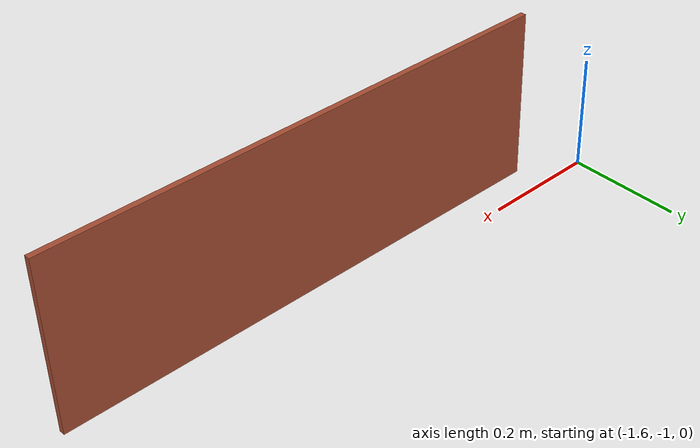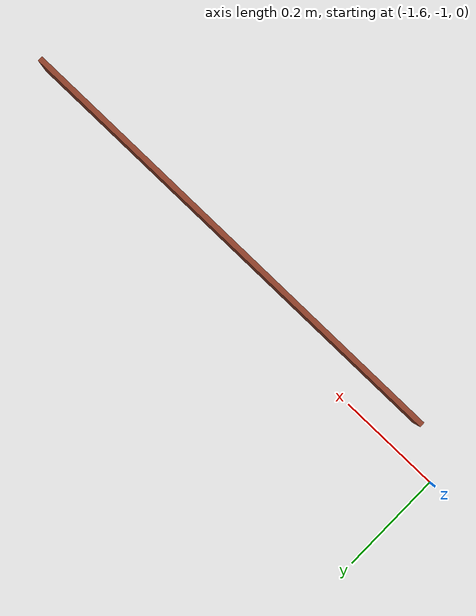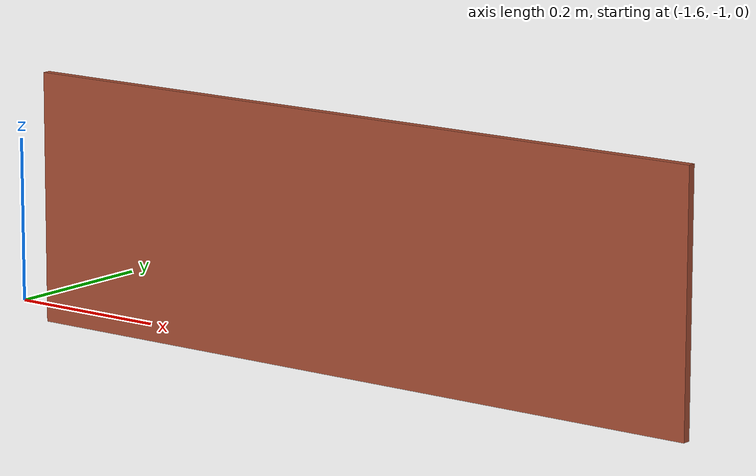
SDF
<?xml version='1.0'?>
<sdf version='1.7'>
  <model name='fusta2'>
    <pose>-0.7525 -0.5325 0 0 -0 0</pose>
    <link name='Wall_2'>
      <collision name='Wall_2_Collision'>
        <geometry>
          <box>
            <size>0.9 0.01 0.3</size>
          </box>
        </geometry>
        <pose>0 0 0.15 0 -0 0</pose>
      </collision>
      <visual name='Wall_2_Visual'>
        <pose>0 0 0.15 0 -0 0</pose>
        <geometry>
          <box>
            <size>0.9 0.01 0.3</size>
          </box>
        </geometry>
        <material>
          <script>
            <uri>file://media/materials/scripts/gazebo.material</uri>
            <name>Gazebo/Bricks</name>
          </script>
          <ambient>0.996078 0.47451 0.0196078 1</ambient>
        </material>
        <meta>
          <layer>0</layer>
        </meta>
      </visual>
      <pose>-0.3025 -0.5275 0 0 -0 3.14159</pose>
    </link>
    <static>1</static>
  </model>
</sdf>
